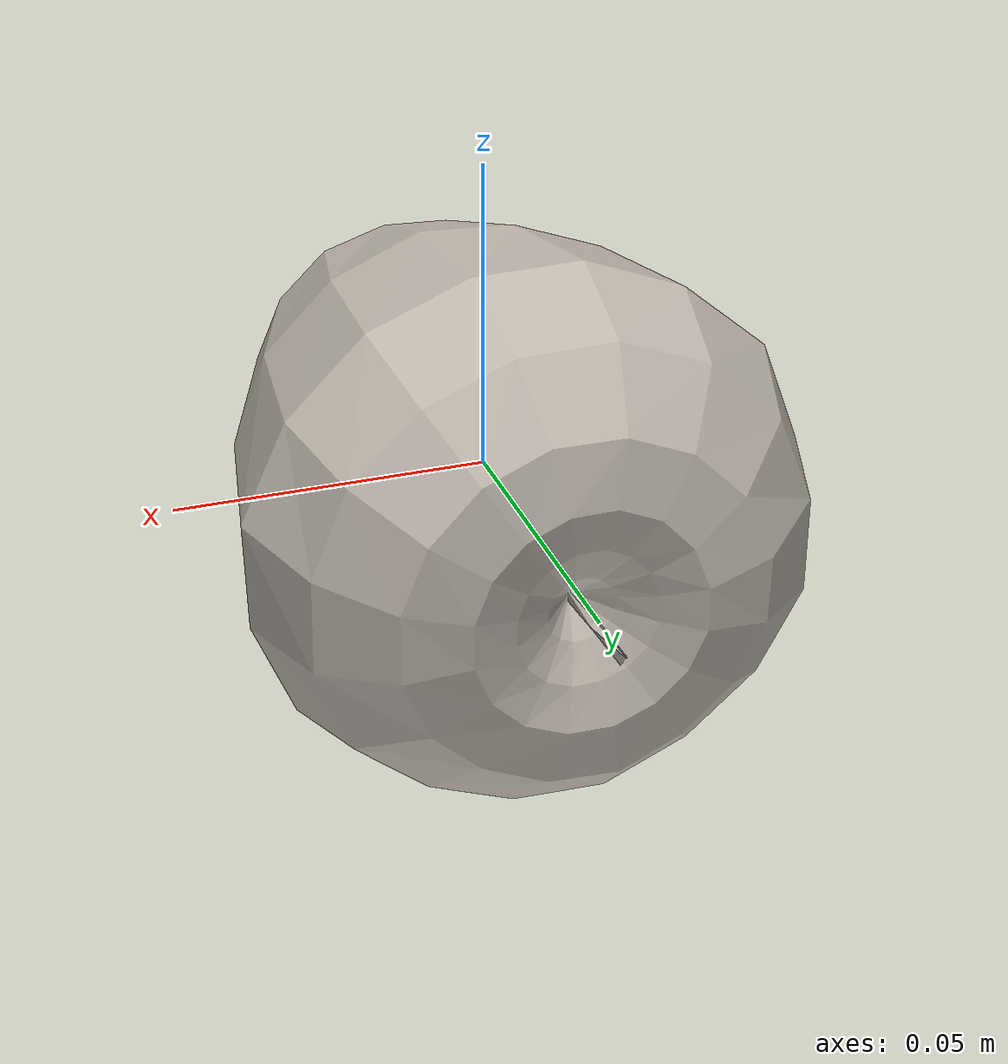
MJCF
<mujoco model="Apple_10">
  <compiler autolimits="true" boundmass="0.01" angle="radian"/>
  <default>
    <default class="/">
      <default class="__VISUAL_MJT__">
        <geom contype="0" conaffinity="0" group="0"/>
      </default>
      <default class="__STRUCTURAL_MJT__">
        <geom contype="8" conaffinity="15" group="4" friction="0.90000000000000002 0.90000000000000002 0.001" solref="0.025000000000000001 1" solimp="0.998 0.998 0.001"/>
      </default>
      <default class="__DYNAMIC_MJT__">
        <geom contype="1" conaffinity="15" group="4" friction="0.90000000000000002 0.90000000000000002 0.001" solref="0.025000000000000001 1" solimp="0.998 0.998 0.001"/>
      </default>
    </default>
  </default>
  <asset>
    <texture name="Apple1_Mat2" type="2d" file="Apple1_AlbedoTransparency2.png"/>
    <material name="material_Apple1_Mat2" class="/" texture="Apple1_Mat2" specular="0.5" shininess="0.5" rgba="1 1 1 1"/>
    <mesh name="Apple_10_apple_a10" class="/" file="Apple_10_apple_a10/Apple_10_apple_a10.obj" scale="1 1 1"/>
  </asset>
  <worldbody>
    <body name="Apple_10">
      <joint name="Apple_10_free" class="/" type="free" pos="0 0 0" axis="0 0 1" stiffness="0" range="0 0" armature="0" damping="0.10000000000000001" frictionloss="0"/>
      <body name="Apple_10_apple_a10" pos="-0 -0.0033700000000000002 0" quat="1 0 0 0">
        <geom name="Apple_10_apple_a10" class="__VISUAL_MJT__" type="mesh" material="material_Apple1_Mat2" shellinertia="false" mesh="Apple_10_apple_a10"/>
        <geom name="Apple_10_PrimitiveCollider_0" class="__DYNAMIC_MJT__" type="capsule" size="0.043676331639289856 0.013554036617279053" rgba="0 1 0 1" pos="-0 0.0033739209175109863 0" quat="0.70710678118654757 0.70710678118654746 0 0"/>
      </body>
    </body>
  </worldbody>
</mujoco>
